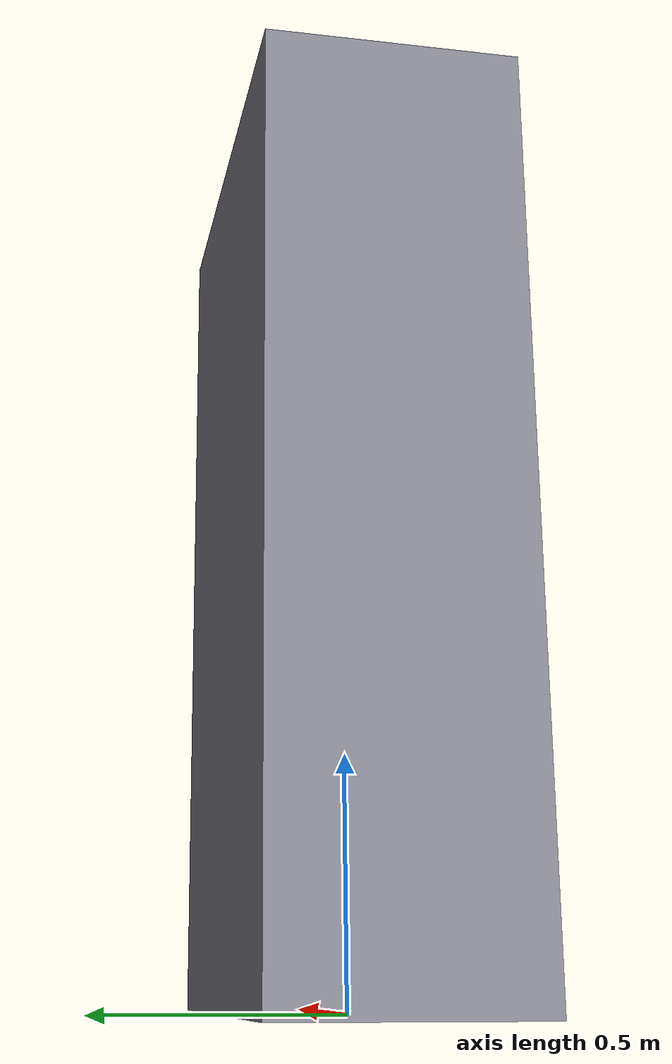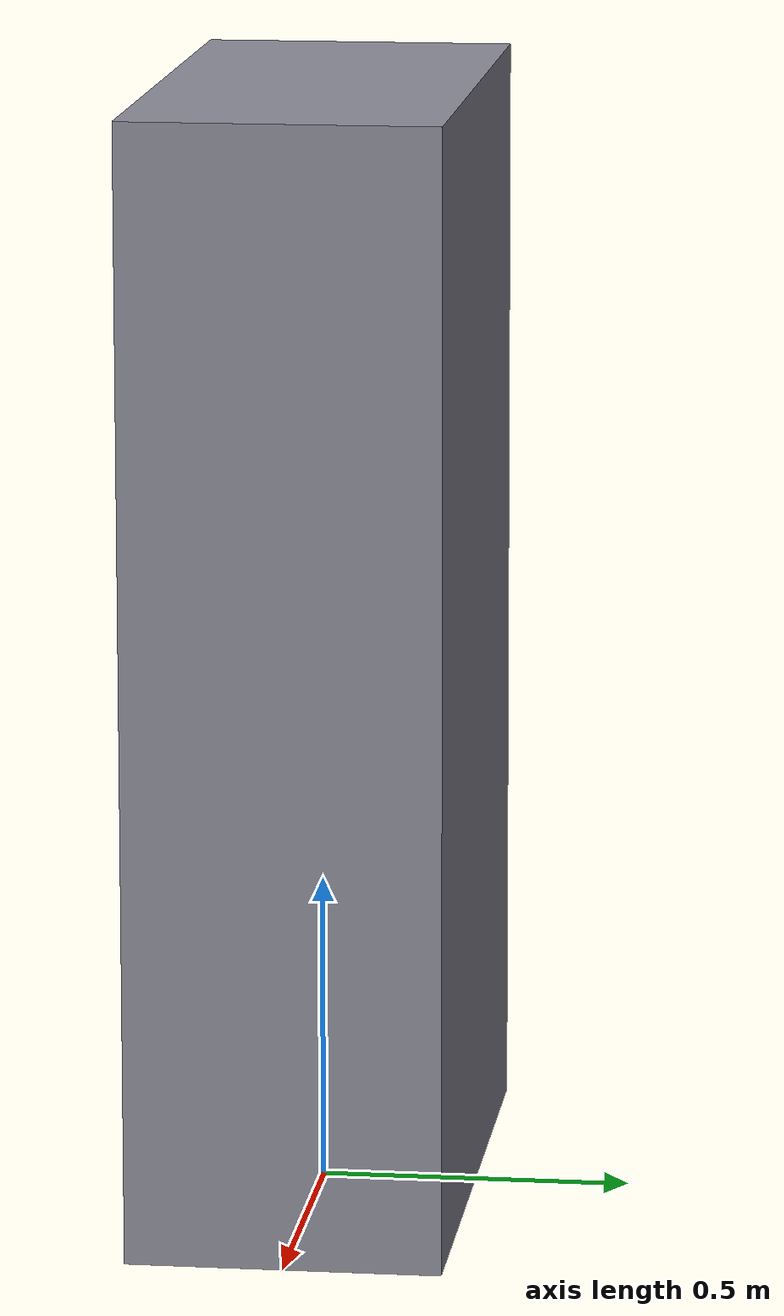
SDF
<?xml version="1.0"?>
<sdf version="1.6">
  <model name="aws_robomaker_warehouse_ShelfF_01">
    <static>true</static>
    <link name="link">
      <collision name="collision">
        <geometry>
          <box>
            <size>1.0 0.5 1.8</size>
          </box>
        </geometry>
      </collision>
      <visual name="visual">
        <pose>0 0 0.9 0 0 0</pose>
        <geometry>
          <box>
            <size>1.0 0.5 1.8</size>
          </box>
        </geometry>
        <material>
          <ambient>0.55 0.55 0.6 1</ambient>
          <diffuse>0.55 0.55 0.6 1</diffuse>
          <specular>0.1 0.1 0.1 1</specular>
        </material>
      </visual>
    </link>
  </model>
</sdf>
